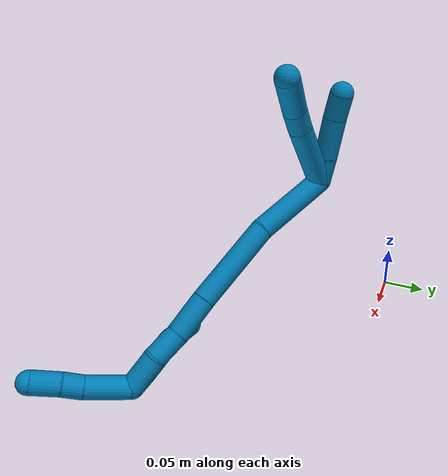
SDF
<sdf version="1.7">
 <world name="default">
  <model name="photoneo_s_sensor">
   <static>1</static>
   <pose>0 0 2 1.57079 1.57079 3.14159</pose>
   <link name="link">
    <inertial><mass>0.1</mass></inertial>
    <sensor name="sensor" type="depth">
     <update_rate>30</update_rate>
     <camera>
      <horizontal_fov>1.22</horizontal_fov>
      <image><width>1920</width><height>1200</height><format>B8G8R8</format></image>
      <clip><near>0.1</near><far>4</far></clip>
      <depth_camera><output>points</output></depth_camera>
     </camera>
     <plugin name="camera_plugin" filename="libgazebo_ros_depth_camera.so">
      <baseline>0.2</baseline>
      <alwaysOn>1</alwaysOn>
      <updateRate>0.0</updateRate>
      <cameraName>camera_ir</cameraName>
      <imageTopicName>/camera/color/image_raw</imageTopicName>
      <cameraInfoTopicName>/camera/color/camera_info</cameraInfoTopicName>
      <depthImageTopicName>/camera/depth/image_raw</depthImageTopicName>
      <depthImageCameraInfoTopicName>/camera/depth/camera_info</depthImageCameraInfoTopicName>
      <pointCloudTopicName>/camera/depth/points</pointCloudTopicName>
      <frameName>fr_optical</frameName>
      <pointCloudCutoff>0.1</pointCloudCutoff>
      <pointCloudCutoffMax>2.0</pointCloudCutoffMax>
      <distortionK1>0</distortionK1>
      <distortionK2>0</distortionK2>
      <distortionK3>0</distortionK3>
      <distortionT1>0</distortionT1>
      <distortionT2>0</distortionT2>
      <CxPrime>0</CxPrime>
      <Cx>0</Cx>
      <Cy>0</Cy>
      <focalLength>0</focalLength>
      <hackBaseline>0</hackBaseline>
     </plugin>
    </sensor>
   </link>
  </model>
  <model name="bin">
   <static>1</static>
   <link name="bottom">
    <collision name="collision-bottom">
     <pose>0 0 -0.01 0 -0 0</pose>
     <geometry><box><size>0.8 0.6 0.02</size></box></geometry>
     <surface>
      <friction><ode><mu>100</mu><mu2>100</mu2></ode></friction>
      <contact><collide_bitmask>65535</collide_bitmask></contact>
     </surface>
    </collision>
   </link>
   <link name="west_wall">
    <collision name="collision-west_wall">
     <pose>-0.41 0 0.1 0 -0 0</pose>
     <geometry><box><size>0.02 0.6 0.2</size></box></geometry>
     <surface>
      <friction><ode><mu>100</mu><mu2>100</mu2></ode></friction>
      <contact><collide_bitmask>65535</collide_bitmask></contact>
     </surface>
    </collision>
   </link>
   <link name="east_wall">
    <collision name="collision-east_wall">
     <pose>0.41 0 0.1 0 -0 0</pose>
     <geometry><box><size>0.02 0.6 0.2</size></box></geometry>
     <surface>
      <friction><ode><mu>100</mu><mu2>100</mu2></ode></friction>
      <contact><collide_bitmask>65535</collide_bitmask></contact>
     </surface>
    </collision>
   </link>
   <link name="south_wall">
    <collision name="collision-south_wall">
     <pose>0 -0.31 0.1 0 -0 0</pose>
     <geometry><box><size>0.8 0.02 0.2</size></box></geometry>
     <surface>
      <friction><ode><mu>100</mu><mu2>100</mu2></ode></friction>
      <contact><collide_bitmask>65535</collide_bitmask></contact>
     </surface>
    </collision>
   </link>
   <link name="north_wall">
    <collision name="collision-north_wall">
     <pose>0 0.31 0.1 0 -0 0</pose>
     <geometry><box><size>0.8 0.02 0.2</size></box></geometry>
     <surface>
      <friction><ode><mu>100</mu><mu2>100</mu2></ode></friction>
      <contact><collide_bitmask>65535</collide_bitmask></contact>
     </surface>
    </collision>
   </link>
  </model>
  <model name="9">
   <static>0</static>
   <link name="9">
    <collision name="collision-cylinder-e_1_2_8">
     <pose>0.033297 0.016899 -0.015683 -2.3189 0.965177 -1.75292</pose>
     <geometry><cylinder><radius>0.0125</radius><length>0.080999</length></cylinder></geometry>
     <surface>
      <friction><ode><mu>1.16</mu><mu2>1.16</mu2><slip1>0</slip1><slip2>0</slip2></ode></friction>
      <contact><ode><kp>1e+06</kp><kd>1</kd><max_vel>0</max_vel><min_depth>0.001</min_depth></ode></contact>
     </surface>
    </collision>
    <visual name="visual-cylinder-e_1_2_8">
     <pose>0.033297 0.016899 -0.015683 -2.3189 0.965177 -1.75292</pose>
     <geometry><cylinder><radius>0.0125</radius><length>0.080999</length></cylinder></geometry>
     <material><ambient>0 0.490196 0.709804 1</ambient></material>
    </visual>
    <collision name="collision-cylinder-e_2_8_9">
     <pose>0.076301 0.03907 -0.036526 -2.34536 0.920998 -1.73515</pose>
     <geometry><cylinder><radius>0.0125</radius><length>0.024383</length></cylinder></geometry>
     <surface>
      <friction><ode><mu>1.16</mu><mu2>1.16</mu2><slip1>0</slip1><slip2>0</slip2></ode></friction>
      <contact><ode><kp>1e+06</kp><kd>1</kd><max_vel>0</max_vel><min_depth>0.001</min_depth></ode></contact>
     </surface>
    </collision>
    <visual name="visual-cylinder-e_2_8_9">
     <pose>0.076301 0.03907 -0.036526 -2.34536 0.920998 -1.73515</pose>
     <geometry><cylinder><radius>0.0125</radius><length>0.024383</length></cylinder></geometry>
     <material><ambient>0 0.490196 0.709804 1</ambient></material>
    </visual>
    <collision name="collision-cylinder-e_3_9_6">
     <pose>0.102656 0.052239 -0.05426 -2.58088 0.842458 -1.9992</pose>
     <geometry><cylinder><radius>0.0125</radius><length>0.044617</length></cylinder></geometry>
     <surface>
      <friction><ode><mu>1.16</mu><mu2>1.16</mu2><slip1>0</slip1><slip2>0</slip2></ode></friction>
      <contact><ode><kp>1e+06</kp><kd>1</kd><max_vel>0</max_vel><min_depth>0.001</min_depth></ode></contact>
     </surface>
    </collision>
    <visual name="visual-cylinder-e_3_9_6">
     <pose>0.102656 0.052239 -0.05426 -2.58088 0.842458 -1.9992</pose>
     <geometry><cylinder><radius>0.0125</radius><length>0.044617</length></cylinder></geometry>
     <material><ambient>0 0.490196 0.709804 1</ambient></material>
    </visual>
    <collision name="collision-cylinder-e_1_2_10">
     <pose>0.005585 0.012777 -0.004603 -1.91657 0.390145 -0.54823</pose>
     <geometry><cylinder><radius>0.0125</radius><length>0.029368</length></cylinder></geometry>
     <surface>
      <friction><ode><mu>1.16</mu><mu2>1.16</mu2><slip1>0</slip1><slip2>0</slip2></ode></friction>
      <contact><ode><kp>1e+06</kp><kd>1</kd><max_vel>0</max_vel><min_depth>0.001</min_depth></ode></contact>
     </surface>
    </collision>
    <visual name="visual-cylinder-e_1_2_10">
     <pose>0.005585 0.012777 -0.004603 -1.91657 0.390145 -0.54823</pose>
     <geometry><cylinder><radius>0.0125</radius><length>0.029368</length></cylinder></geometry>
     <material><ambient>0 0.490196 0.709804 1</ambient></material>
    </visual>
    <collision name="collision-cylinder-e_2_10_11">
     <pose>0.020237 0.044439 -0.016049 -1.91846 0.424039 -0.595657</pose>
     <geometry><cylinder><radius>0.0125</radius><length>0.044079</length></cylinder></geometry>
     <surface>
      <friction><ode><mu>1.16</mu><mu2>1.16</mu2><slip1>0</slip1><slip2>0</slip2></ode></friction>
      <contact><ode><kp>1e+06</kp><kd>1</kd><max_vel>0</max_vel><min_depth>0.001</min_depth></ode></contact>
     </surface>
    </collision>
    <visual name="visual-cylinder-e_2_10_11">
     <pose>0.020237 0.044439 -0.016049 -1.91846 0.424039 -0.595657</pose>
     <geometry><cylinder><radius>0.0125</radius><length>0.044079</length></cylinder></geometry>
     <material><ambient>0 0.490196 0.709804 1</ambient></material>
    </visual>
    <collision name="collision-cylinder-e_3_11_5">
     <pose>0.034624 0.074342 -0.028052 -2.00871 0.412149 -0.635153</pose>
     <geometry><cylinder><radius>0.0125</radius><length>0.026554</length></cylinder></geometry>
     <surface>
      <friction><ode><mu>1.16</mu><mu2>1.16</mu2><slip1>0</slip1><slip2>0</slip2></ode></friction>
      <contact><ode><kp>1e+06</kp><kd>1</kd><max_vel>0</max_vel><min_depth>0.001</min_depth></ode></contact>
     </surface>
    </collision>
    <visual name="visual-cylinder-e_3_11_5">
     <pose>0.034624 0.074342 -0.028052 -2.00871 0.412149 -0.635153</pose>
     <geometry><cylinder><radius>0.0125</radius><length>0.026554</length></cylinder></geometry>
     <material><ambient>0 0.490196 0.709804 1</ambient></material>
    </visual>
    <collision name="collision-cylinder-e_1_2_12">
     <pose>0.021656 -0.037742 -0.002012 1.62407 0.520314 0.547429</pose>
     <geometry><cylinder><radius>0.0125</radius><length>0.087121</length></cylinder></geometry>
     <surface>
      <friction><ode><mu>1.16</mu><mu2>1.16</mu2><slip1>0</slip1><slip2>0</slip2></ode></friction>
      <contact><ode><kp>1e+06</kp><kd>1</kd><max_vel>0</max_vel><min_depth>0.001</min_depth></ode></contact>
     </surface>
    </collision>
    <visual name="visual-cylinder-e_1_2_12">
     <pose>0.021656 -0.037742 -0.002012 1.62407 0.520314 0.547429</pose>
     <geometry><cylinder><radius>0.0125</radius><length>0.087121</length></cylinder></geometry>
     <material><ambient>0 0.490196 0.709804 1</ambient></material>
    </visual>
    <collision name="collision-cylinder-e_2_12_13">
     <pose>0.059475 -0.121336 -0.007612 1.64888 0.337933 0.364823</pose>
     <geometry><cylinder><radius>0.0125</radius><length>0.097499</length></cylinder></geometry>
     <surface>
      <friction><ode><mu>1.16</mu><mu2>1.16</mu2><slip1>0</slip1><slip2>0</slip2></ode></friction>
      <contact><ode><kp>1e+06</kp><kd>1</kd><max_vel>0</max_vel><min_depth>0.001</min_depth></ode></contact>
     </surface>
    </collision>
    <visual name="visual-cylinder-e_2_12_13">
     <pose>0.059475 -0.121336 -0.007612 1.64888 0.337933 0.364823</pose>
     <geometry><cylinder><radius>0.0125</radius><length>0.097499</length></cylinder></geometry>
     <material><ambient>0 0.490196 0.709804 1</ambient></material>
    </visual>
    <collision name="collision-cylinder-e_3_13_14">
     <pose>0.081665 -0.188244 -0.012492 1.63208 0.27833 0.295685</pose>
     <geometry><cylinder><radius>0.0125</radius><length>0.043879</length></cylinder></geometry>
     <surface>
      <friction><ode><mu>1.16</mu><mu2>1.16</mu2><slip1>0</slip1><slip2>0</slip2></ode></friction>
      <contact><ode><kp>1e+06</kp><kd>1</kd><max_vel>0</max_vel><min_depth>0.001</min_depth></ode></contact>
     </surface>
    </collision>
    <visual name="visual-cylinder-e_3_13_14">
     <pose>0.081665 -0.188244 -0.012492 1.63208 0.27833 0.295685</pose>
     <geometry><cylinder><radius>0.0125</radius><length>0.043879</length></cylinder></geometry>
     <material><ambient>0 0.490196 0.709804 1</ambient></material>
    </visual>
    <collision name="collision-cylinder-e_4_14_15">
     <pose>0.094288 -0.224391 -0.0145 1.61823 0.411602 0.431003</pose>
     <geometry><cylinder><radius>0.0125</radius><length>0.03297</length></cylinder></geometry>
     <surface>
      <friction><ode><mu>1.16</mu><mu2>1.16</mu2><slip1>0</slip1><slip2>0</slip2></ode></friction>
      <contact><ode><kp>1e+06</kp><kd>1</kd><max_vel>0</max_vel><min_depth>0.001</min_depth></ode></contact>
     </surface>
    </collision>
    <visual name="visual-cylinder-e_4_14_15">
     <pose>0.094288 -0.224391 -0.0145 1.61823 0.411602 0.431003</pose>
     <geometry><cylinder><radius>0.0125</radius><length>0.03297</length></cylinder></geometry>
     <material><ambient>0 0.490196 0.709804 1</ambient></material>
    </visual>
    <collision name="collision-cylinder-e_5_15_1">
     <pose>0.104977 -0.258224 -0.013443 1.47643 0.214108 0.194927</pose>
     <geometry><cylinder><radius>0.0125</radius><length>0.038531</length></cylinder></geometry>
     <surface>
      <friction><ode><mu>1.16</mu><mu2>1.16</mu2><slip1>0</slip1><slip2>0</slip2></ode></friction>
      <contact><ode><kp>1e+06</kp><kd>1</kd><max_vel>0</max_vel><min_depth>0.001</min_depth></ode></contact>
     </surface>
    </collision>
    <visual name="visual-cylinder-e_5_15_1">
     <pose>0.104977 -0.258224 -0.013443 1.47643 0.214108 0.194927</pose>
     <geometry><cylinder><radius>0.0125</radius><length>0.038531</length></cylinder></geometry>
     <material><ambient>0 0.490196 0.709804 1</ambient></material>
    </visual>
    <collision name="collision-cylinder-e_1_1_16">
     <pose>0.131175 -0.284911 -0.007043 1.04354 1.17666 0.732483</pose>
     <geometry><cylinder><radius>0.0125</radius><length>0.047881</length></cylinder></geometry>
     <surface>
      <friction><ode><mu>1.16</mu><mu2>1.16</mu2><slip1>0</slip1><slip2>0</slip2></ode></friction>
      <contact><ode><kp>1e+06</kp><kd>1</kd><max_vel>0</max_vel><min_depth>0.001</min_depth></ode></contact>
     </surface>
    </collision>
    <visual name="visual-cylinder-e_1_1_16">
     <pose>0.131175 -0.284911 -0.007043 1.04354 1.17666 0.732483</pose>
     <geometry><cylinder><radius>0.0125</radius><length>0.047881</length></cylinder></geometry>
     <material><ambient>0 0.490196 0.709804 1</ambient></material>
    </visual>
    <collision name="collision-cylinder-e_2_16_17">
     <pose>0.164175 -0.294594 -0.001165 0.946743 1.37664 0.797473</pose>
     <geometry><cylinder><radius>0.0125</radius><length>0.022207</length></cylinder></geometry>
     <surface>
      <friction><ode><mu>1.16</mu><mu2>1.16</mu2><slip1>0</slip1><slip2>0</slip2></ode></friction>
      <contact><ode><kp>1e+06</kp><kd>1</kd><max_vel>0</max_vel><min_depth>0.001</min_depth></ode></contact>
     </surface>
    </collision>
    <visual name="visual-cylinder-e_2_16_17">
     <pose>0.164175 -0.294594 -0.001165 0.946743 1.37664 0.797473</pose>
     <geometry><cylinder><radius>0.0125</radius><length>0.022207</length></cylinder></geometry>
     <material><ambient>0 0.490196 0.709804 1</ambient></material>
    </visual>
    <collision name="collision-cylinder-e_3_17_4">
     <pose>0.189396 -0.300084 0.002175 1.06284 1.27964 0.82482</pose>
     <geometry><cylinder><radius>0.0125</radius><length>0.029912</length></cylinder></geometry>
     <surface>
      <friction><ode><mu>1.16</mu><mu2>1.16</mu2><slip1>0</slip1><slip2>0</slip2></ode></friction>
      <contact><ode><kp>1e+06</kp><kd>1</kd><max_vel>0</max_vel><min_depth>0.001</min_depth></ode></contact>
     </surface>
    </collision>
    <visual name="visual-cylinder-e_3_17_4">
     <pose>0.189396 -0.300084 0.002175 1.06284 1.27964 0.82482</pose>
     <geometry><cylinder><radius>0.0125</radius><length>0.029912</length></cylinder></geometry>
     <material><ambient>0 0.490196 0.709804 1</ambient></material>
    </visual>
    <collision name="collision-cylinder-e_1_1_18">
     <pose>0.103141 -0.270434 -0.005245 -0.793783 -0.574387 0.246336</pose>
     <geometry><cylinder><radius>0.0125</radius><length>0.021826</length></cylinder></geometry>
     <surface>
      <friction><ode><mu>1.16</mu><mu2>1.16</mu2><slip1>0</slip1><slip2>0</slip2></ode></friction>
      <contact><ode><kp>1e+06</kp><kd>1</kd><max_vel>0</max_vel><min_depth>0.001</min_depth></ode></contact>
     </surface>
    </collision>
    <visual name="visual-cylinder-e_1_1_18">
     <pose>0.103141 -0.270434 -0.005245 -0.793783 -0.574387 0.246336</pose>
     <geometry><cylinder><radius>0.0125</radius><length>0.021826</length></cylinder></geometry>
     <material><ambient>0 0.490196 0.709804 1</ambient></material>
    </visual>
    <collision name="collision-cylinder-e_2_18_19">
     <pose>0.091177 -0.254884 0.00739 -0.967585 -0.503743 0.2688</pose>
     <geometry><cylinder><radius>0.0125</radius><length>0.025005</length></cylinder></geometry>
     <surface>
      <friction><ode><mu>1.16</mu><mu2>1.16</mu2><slip1>0</slip1><slip2>0</slip2></ode></friction>
      <contact><ode><kp>1e+06</kp><kd>1</kd><max_vel>0</max_vel><min_depth>0.001</min_depth></ode></contact>
     </surface>
    </collision>
    <visual name="visual-cylinder-e_2_18_19">
     <pose>0.091177 -0.254884 0.00739 -0.967585 -0.503743 0.2688</pose>
     <geometry><cylinder><radius>0.0125</radius><length>0.025005</length></cylinder></geometry>
     <material><ambient>0 0.490196 0.709804 1</ambient></material>
    </visual>
    <collision name="collision-cylinder-e_3_19_20">
     <pose>0.080198 -0.236968 0.019058 -1.02074 -0.442337 0.250442</pose>
     <geometry><cylinder><radius>0.0125</radius><length>0.0231</length></cylinder></geometry>
     <surface>
      <friction><ode><mu>1.16</mu><mu2>1.16</mu2><slip1>0</slip1><slip2>0</slip2></ode></friction>
      <contact><ode><kp>1e+06</kp><kd>1</kd><max_vel>0</max_vel><min_depth>0.001</min_depth></ode></contact>
     </surface>
    </collision>
    <visual name="visual-cylinder-e_3_19_20">
     <pose>0.080198 -0.236968 0.019058 -1.02074 -0.442337 0.250442</pose>
     <geometry><cylinder><radius>0.0125</radius><length>0.0231</length></cylinder></geometry>
     <material><ambient>0 0.490196 0.709804 1</ambient></material>
    </visual>
    <collision name="collision-cylinder-e_4_20_3">
     <pose>0.065436 -0.217956 0.029747 -1.0934 -0.711511 0.44477</pose>
     <geometry><cylinder><radius>0.0125</radius><length>0.030069</length></cylinder></geometry>
     <surface>
      <friction><ode><mu>1.16</mu><mu2>1.16</mu2><slip1>0</slip1><slip2>0</slip2></ode></friction>
      <contact><ode><kp>1e+06</kp><kd>1</kd><max_vel>0</max_vel><min_depth>0.001</min_depth></ode></contact>
     </surface>
    </collision>
    <visual name="visual-cylinder-e_4_20_3">
     <pose>0.065436 -0.217956 0.029747 -1.0934 -0.711511 0.44477</pose>
     <geometry><cylinder><radius>0.0125</radius><length>0.030069</length></cylinder></geometry>
     <material><ambient>0 0.490196 0.709804 1</ambient></material>
    </visual>
    <collision name="collision-sphere-3">
     <pose>0.055619 -0.207842 0.034978 0 -0 0</pose>
     <geometry><sphere><radius>0.0125</radius></sphere></geometry>
     <surface>
      <friction><ode><mu>1.16</mu><mu2>1.16</mu2><slip1>0</slip1><slip2>0</slip2></ode></friction>
      <contact><ode><kp>1e+06</kp><kd>1</kd><max_vel>0</max_vel><min_depth>0.001</min_depth></ode></contact>
     </surface>
    </collision>
    <visual name="visual-sphere-3">
     <pose>0.055619 -0.207842 0.034978 0 -0 0</pose>
     <geometry><sphere><radius>0.0125</radius></sphere></geometry>
     <material><ambient>0 0.490196 0.709804 1</ambient></material>
    </visual>
    <collision name="collision-sphere-20">
     <pose>0.075254 -0.22807 0.024515 0 -0 0</pose>
     <geometry><sphere><radius>0.0125</radius></sphere></geometry>
     <surface>
      <friction><ode><mu>1.16</mu><mu2>1.16</mu2><slip1>0</slip1><slip2>0</slip2></ode></friction>
      <contact><ode><kp>1e+06</kp><kd>1</kd><max_vel>0</max_vel><min_depth>0.001</min_depth></ode></contact>
     </surface>
    </collision>
    <visual name="visual-sphere-20">
     <pose>0.075254 -0.22807 0.024515 0 -0 0</pose>
     <geometry><sphere><radius>0.0125</radius></sphere></geometry>
     <material><ambient>0 0.490196 0.709804 1</ambient></material>
    </visual>
    <collision name="collision-sphere-19">
     <pose>0.085142 -0.245867 0.013602 0 -0 0</pose>
     <geometry><sphere><radius>0.0125</radius></sphere></geometry>
     <surface>
      <friction><ode><mu>1.16</mu><mu2>1.16</mu2><slip1>0</slip1><slip2>0</slip2></ode></friction>
      <contact><ode><kp>1e+06</kp><kd>1</kd><max_vel>0</max_vel><min_depth>0.001</min_depth></ode></contact>
     </surface>
    </collision>
    <visual name="visual-sphere-19">
     <pose>0.085142 -0.245867 0.013602 0 -0 0</pose>
     <geometry><sphere><radius>0.0125</radius></sphere></geometry>
     <material><ambient>0 0.490196 0.709804 1</ambient></material>
    </visual>
    <collision name="collision-sphere-11">
     <pose>0.029305 0.063324 -0.022893 0 -0 0</pose>
     <geometry><sphere><radius>0.0125</radius></sphere></geometry>
     <surface>
      <friction><ode><mu>1.16</mu><mu2>1.16</mu2><slip1>0</slip1><slip2>0</slip2></ode></friction>
      <contact><ode><kp>1e+06</kp><kd>1</kd><max_vel>0</max_vel><min_depth>0.001</min_depth></ode></contact>
     </surface>
    </collision>
    <visual name="visual-sphere-11">
     <pose>0.029305 0.063324 -0.022893 0 -0 0</pose>
     <geometry><sphere><radius>0.0125</radius></sphere></geometry>
     <material><ambient>0 0.490196 0.709804 1</ambient></material>
    </visual>
    <collision name="collision-sphere-10">
     <pose>0.011169 0.025553 -0.009205 0 -0 0</pose>
     <geometry><sphere><radius>0.0125</radius></sphere></geometry>
     <surface>
      <friction><ode><mu>1.16</mu><mu2>1.16</mu2><slip1>0</slip1><slip2>0</slip2></ode></friction>
      <contact><ode><kp>1e+06</kp><kd>1</kd><max_vel>0</max_vel><min_depth>0.001</min_depth></ode></contact>
     </surface>
    </collision>
    <visual name="visual-sphere-10">
     <pose>0.011169 0.025553 -0.009205 0 -0 0</pose>
     <geometry><sphere><radius>0.0125</radius></sphere></geometry>
     <material><ambient>0 0.490196 0.709804 1</ambient></material>
    </visual>
    <collision name="collision-sphere-6">
     <pose>0.119305 0.060136 -0.066836 0 -0 0</pose>
     <geometry><sphere><radius>0.0125</radius></sphere></geometry>
     <surface>
      <friction><ode><mu>1.16</mu><mu2>1.16</mu2><slip1>0</slip1><slip2>0</slip2></ode></friction>
      <contact><ode><kp>1e+06</kp><kd>1</kd><max_vel>0</max_vel><min_depth>0.001</min_depth></ode></contact>
     </surface>
    </collision>
    <visual name="visual-sphere-6">
     <pose>0.119305 0.060136 -0.066836 0 -0 0</pose>
     <geometry><sphere><radius>0.0125</radius></sphere></geometry>
     <material><ambient>0 0.490196 0.709804 1</ambient></material>
    </visual>
    <collision name="collision-sphere-9">
     <pose>0.086008 0.044342 -0.041685 0 -0 0</pose>
     <geometry><sphere><radius>0.0125</radius></sphere></geometry>
     <surface>
      <friction><ode><mu>1.16</mu><mu2>1.16</mu2><slip1>0</slip1><slip2>0</slip2></ode></friction>
      <contact><ode><kp>1e+06</kp><kd>1</kd><max_vel>0</max_vel><min_depth>0.001</min_depth></ode></contact>
     </surface>
    </collision>
    <visual name="visual-sphere-9">
     <pose>0.086008 0.044342 -0.041685 0 -0 0</pose>
     <geometry><sphere><radius>0.0125</radius></sphere></geometry>
     <material><ambient>0 0.490196 0.709804 1</ambient></material>
    </visual>
    <collision name="collision-sphere-2">
     <geometry><sphere><radius>0.0125</radius></sphere></geometry>
     <surface>
      <friction><ode><mu>1.16</mu><mu2>1.16</mu2><slip1>0</slip1><slip2>0</slip2></ode></friction>
      <contact><ode><kp>1e+06</kp><kd>1</kd><max_vel>0</max_vel><min_depth>0.001</min_depth></ode></contact>
     </surface>
    </collision>
    <visual name="visual-sphere-2">
     <geometry><sphere><radius>0.0125</radius></sphere></geometry>
     <material><ambient>0 0.490196 0.709804 1</ambient></material>
    </visual>
    <collision name="collision-sphere-8">
     <pose>0.066594 0.033798 -0.031367 0 -0 0</pose>
     <geometry><sphere><radius>0.0125</radius></sphere></geometry>
     <surface>
      <friction><ode><mu>1.16</mu><mu2>1.16</mu2><slip1>0</slip1><slip2>0</slip2></ode></friction>
      <contact><ode><kp>1e+06</kp><kd>1</kd><max_vel>0</max_vel><min_depth>0.001</min_depth></ode></contact>
     </surface>
    </collision>
    <visual name="visual-sphere-8">
     <pose>0.066594 0.033798 -0.031367 0 -0 0</pose>
     <geometry><sphere><radius>0.0125</radius></sphere></geometry>
     <material><ambient>0 0.490196 0.709804 1</ambient></material>
    </visual>
    <collision name="collision-sphere-5">
     <pose>0.039942 0.085359 -0.03321 0 -0 0</pose>
     <geometry><sphere><radius>0.0125</radius></sphere></geometry>
     <surface>
      <friction><ode><mu>1.16</mu><mu2>1.16</mu2><slip1>0</slip1><slip2>0</slip2></ode></friction>
      <contact><ode><kp>1e+06</kp><kd>1</kd><max_vel>0</max_vel><min_depth>0.001</min_depth></ode></contact>
     </surface>
    </collision>
    <visual name="visual-sphere-5">
     <pose>0.039942 0.085359 -0.03321 0 -0 0</pose>
     <geometry><sphere><radius>0.0125</radius></sphere></geometry>
     <material><ambient>0 0.490196 0.709804 1</ambient></material>
    </visual>
    <collision name="collision-sphere-12">
     <pose>0.043312 -0.075484 -0.004025 0 -0 0</pose>
     <geometry><sphere><radius>0.0125</radius></sphere></geometry>
     <surface>
      <friction><ode><mu>1.16</mu><mu2>1.16</mu2><slip1>0</slip1><slip2>0</slip2></ode></friction>
      <contact><ode><kp>1e+06</kp><kd>1</kd><max_vel>0</max_vel><min_depth>0.001</min_depth></ode></contact>
     </surface>
    </collision>
    <visual name="visual-sphere-12">
     <pose>0.043312 -0.075484 -0.004025 0 -0 0</pose>
     <geometry><sphere><radius>0.0125</radius></sphere></geometry>
     <material><ambient>0 0.490196 0.709804 1</ambient></material>
    </visual>
    <collision name="collision-sphere-13">
     <pose>0.075637 -0.167189 -0.0112 0 -0 0</pose>
     <geometry><sphere><radius>0.0125</radius></sphere></geometry>
     <surface>
      <friction><ode><mu>1.16</mu><mu2>1.16</mu2><slip1>0</slip1><slip2>0</slip2></ode></friction>
      <contact><ode><kp>1e+06</kp><kd>1</kd><max_vel>0</max_vel><min_depth>0.001</min_depth></ode></contact>
     </surface>
    </collision>
    <visual name="visual-sphere-13">
     <pose>0.075637 -0.167189 -0.0112 0 -0 0</pose>
     <geometry><sphere><radius>0.0125</radius></sphere></geometry>
     <material><ambient>0 0.490196 0.709804 1</ambient></material>
    </visual>
    <collision name="collision-sphere-14">
     <pose>0.087693 -0.2093 -0.013784 0 -0 0</pose>
     <geometry><sphere><radius>0.0125</radius></sphere></geometry>
     <surface>
      <friction><ode><mu>1.16</mu><mu2>1.16</mu2><slip1>0</slip1><slip2>0</slip2></ode></friction>
      <contact><ode><kp>1e+06</kp><kd>1</kd><max_vel>0</max_vel><min_depth>0.001</min_depth></ode></contact>
     </surface>
    </collision>
    <visual name="visual-sphere-14">
     <pose>0.087693 -0.2093 -0.013784 0 -0 0</pose>
     <geometry><sphere><radius>0.0125</radius></sphere></geometry>
     <material><ambient>0 0.490196 0.709804 1</ambient></material>
    </visual>
    <collision name="collision-sphere-15">
     <pose>0.100883 -0.239483 -0.015217 0 -0 0</pose>
     <geometry><sphere><radius>0.0125</radius></sphere></geometry>
     <surface>
      <friction><ode><mu>1.16</mu><mu2>1.16</mu2><slip1>0</slip1><slip2>0</slip2></ode></friction>
      <contact><ode><kp>1e+06</kp><kd>1</kd><max_vel>0</max_vel><min_depth>0.001</min_depth></ode></contact>
     </surface>
    </collision>
    <visual name="visual-sphere-15">
     <pose>0.100883 -0.239483 -0.015217 0 -0 0</pose>
     <geometry><sphere><radius>0.0125</radius></sphere></geometry>
     <material><ambient>0 0.490196 0.709804 1</ambient></material>
    </visual>
    <collision name="collision-sphere-1">
     <pose>0.10907 -0.276966 -0.011669 0 -0 0</pose>
     <geometry><sphere><radius>0.0125</radius></sphere></geometry>
     <surface>
      <friction><ode><mu>1.16</mu><mu2>1.16</mu2><slip1>0</slip1><slip2>0</slip2></ode></friction>
      <contact><ode><kp>1e+06</kp><kd>1</kd><max_vel>0</max_vel><min_depth>0.001</min_depth></ode></contact>
     </surface>
    </collision>
    <visual name="visual-sphere-1">
     <pose>0.10907 -0.276966 -0.011669 0 -0 0</pose>
     <geometry><sphere><radius>0.0125</radius></sphere></geometry>
     <material><ambient>0 0.490196 0.709804 1</ambient></material>
    </visual>
    <collision name="collision-sphere-18">
     <pose>0.097212 -0.263901 0.001179 0 -0 0</pose>
     <geometry><sphere><radius>0.0125</radius></sphere></geometry>
     <surface>
      <friction><ode><mu>1.16</mu><mu2>1.16</mu2><slip1>0</slip1><slip2>0</slip2></ode></friction>
      <contact><ode><kp>1e+06</kp><kd>1</kd><max_vel>0</max_vel><min_depth>0.001</min_depth></ode></contact>
     </surface>
    </collision>
    <visual name="visual-sphere-18">
     <pose>0.097212 -0.263901 0.001179 0 -0 0</pose>
     <geometry><sphere><radius>0.0125</radius></sphere></geometry>
     <material><ambient>0 0.490196 0.709804 1</ambient></material>
    </visual>
    <collision name="collision-sphere-16">
     <pose>0.15328 -0.292856 -0.002417 0 -0 0</pose>
     <geometry><sphere><radius>0.0125</radius></sphere></geometry>
     <surface>
      <friction><ode><mu>1.16</mu><mu2>1.16</mu2><slip1>0</slip1><slip2>0</slip2></ode></friction>
      <contact><ode><kp>1e+06</kp><kd>1</kd><max_vel>0</max_vel><min_depth>0.001</min_depth></ode></contact>
     </surface>
    </collision>
    <visual name="visual-sphere-16">
     <pose>0.15328 -0.292856 -0.002417 0 -0 0</pose>
     <geometry><sphere><radius>0.0125</radius></sphere></geometry>
     <material><ambient>0 0.490196 0.709804 1</ambient></material>
    </visual>
    <collision name="collision-sphere-17">
     <pose>0.17507 -0.296333 8.6e-05 0 -0 0</pose>
     <geometry><sphere><radius>0.0125</radius></sphere></geometry>
     <surface>
      <friction><ode><mu>1.16</mu><mu2>1.16</mu2><slip1>0</slip1><slip2>0</slip2></ode></friction>
      <contact><ode><kp>1e+06</kp><kd>1</kd><max_vel>0</max_vel><min_depth>0.001</min_depth></ode></contact>
     </surface>
    </collision>
    <visual name="visual-sphere-17">
     <pose>0.17507 -0.296333 8.6e-05 0 -0 0</pose>
     <geometry><sphere><radius>0.0125</radius></sphere></geometry>
     <material><ambient>0 0.490196 0.709804 1</ambient></material>
    </visual>
    <collision name="collision-sphere-4">
     <pose>0.203723 -0.303835 0.004263 0 -0 0</pose>
     <geometry><sphere><radius>0.0125</radius></sphere></geometry>
     <surface>
      <friction><ode><mu>1.16</mu><mu2>1.16</mu2><slip1>0</slip1><slip2>0</slip2></ode></friction>
      <contact><ode><kp>1e+06</kp><kd>1</kd><max_vel>0</max_vel><min_depth>0.001</min_depth></ode></contact>
     </surface>
    </collision>
    <visual name="visual-sphere-4">
     <pose>0.203723 -0.303835 0.004263 0 -0 0</pose>
     <geometry><sphere><radius>0.0125</radius></sphere></geometry>
     <material><ambient>0 0.490196 0.709804 1</ambient></material>
    </visual>
    <inertial>
     <pose>0.071305 -0.113639 -0.010032 0 -0 0</pose>
     <mass>0.75</mass>
     <inertia>
      <ixx>0.000196</ixx>
      <ixy>0</ixy>
      <ixz>0</ixz>
      <iyy>9.7e-05</iyy>
      <iyz>0</iyz>
      <izz>-2.2e-05</izz>
     </inertia>
    </inertial>
   </link>
   <pose>0.096286 -0.075904 0.175825 1.84532 -0.568361 -0.910917</pose>
  </model>
 </world>
</sdf>
